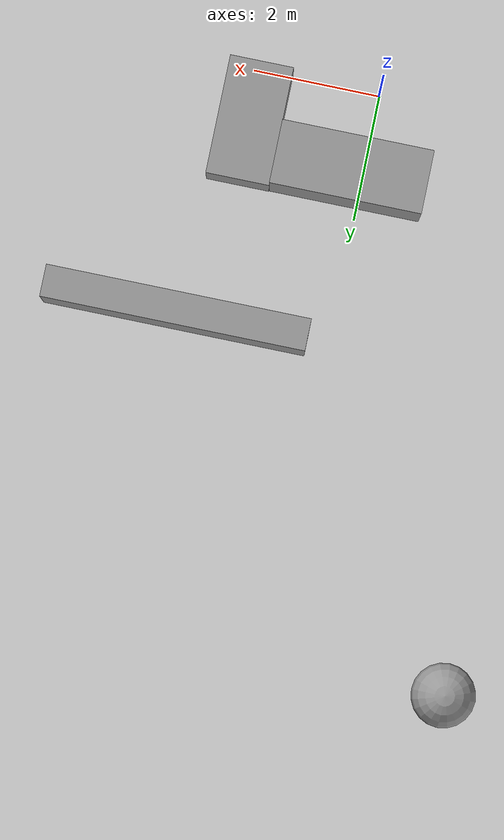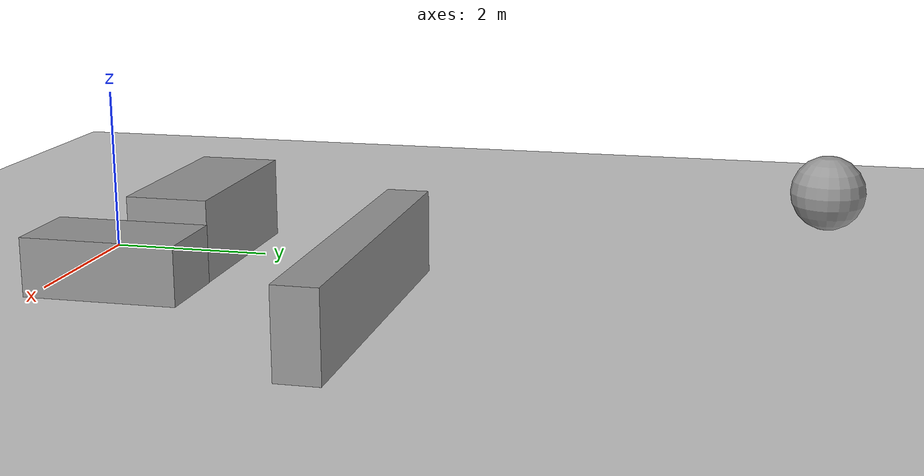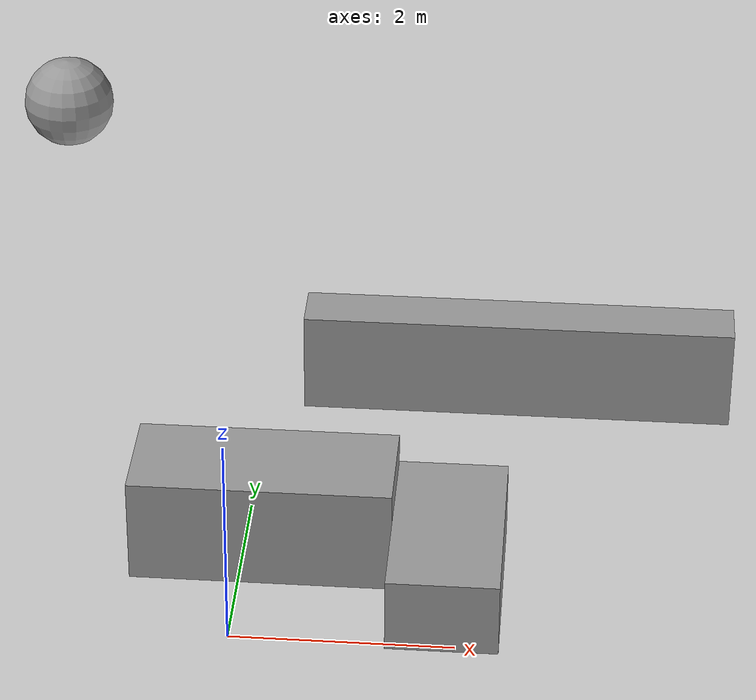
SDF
<sdf version="1.7">
 <world name="default">
  <light name="sun" type="directional">
   <pose>0 0 10 0 -0 0</pose>
   <diffuse>0.8 0.8 0.8 1</diffuse>
   <specular>0.2 0.2 0.2 1</specular>
   <attenuation>
    <range>1000</range>
    <constant>0.9</constant>
    <linear>0.01</linear>
    <quadratic>0.001</quadratic>
   </attenuation>
   <direction>-0.5 0.1 -0.9</direction>
   <spot><inner_angle>0</inner_angle><outer_angle>0</outer_angle><falloff>0</falloff></spot>
  </light>
  <model name="ground_plane">
   <static>1</static>
   <link name="link">
    <collision name="collision">
     <geometry><plane><normal>0 0 1</normal><size>100 100</size></plane></geometry>
     <surface>
      <contact><collide_bitmask>65535</collide_bitmask></contact>
      <friction><ode><mu>100</mu><mu2>50</mu2></ode></friction>
     </surface>
    </collision>
    <visual name="visual">
     <cast_shadows>0</cast_shadows>
     <geometry><plane><normal>0 0 1</normal><size>100 100</size></plane></geometry>
     <material>
      <script><uri>file://media/materials/scripts/gazebo.material</uri><name>Gazebo/Grey</name></script>
     </material>
    </visual>
   </link>
  </model>
  <gravity>0 0 -9.8</gravity>
  <magnetic_field>6e-06 2.3e-05 -4.2e-05</magnetic_field>
  <atmosphere type="adiabatic"/>
  <physics type="ode">
   <max_step_size>0.001</max_step_size>
   <real_time_factor>1</real_time_factor>
   <real_time_update_rate>1000</real_time_update_rate>
  </physics>
  <scene><ambient>0.4 0.4 0.4 1</ambient><background>0.7 0.7 0.7 1</background><shadows>1</shadows></scene>
  <audio><device>default</device></audio>
  <spherical_coordinates>
   <surface_model>EARTH_WGS84</surface_model>
   <latitude_deg>0</latitude_deg>
   <longitude_deg>0</longitude_deg>
   <elevation>0</elevation>
   <heading_deg>0</heading_deg>
  </spherical_coordinates>
  <model name="unit_box_1">
   <pose>0.196842 1.30829 0.5 0 0 -2e-06</pose>
   <link name="link">
    <inertial>
     <mass>1</mass>
     <inertia>
      <ixx>0.166667</ixx>
      <ixy>0</ixy>
      <ixz>0</ixz>
      <iyy>0.166667</iyy>
      <iyz>0</iyz>
      <izz>0.166667</izz>
     </inertia>
    </inertial>
    <collision name="collision"><geometry><box><size>2.38097 1 1</size></box></geometry></collision>
    <visual name="visual">
     <geometry><box><size>2.38097 1 1</size></box></geometry>
     <material>
      <script><name>Gazebo/Grey</name><uri>file://media/materials/scripts/gazebo.material</uri></script>
     </material>
    </visual>
   </link>
   <static>1</static>
  </model>
  <model name="unit_sphere">
   <pose>-2.81866 8.95253 0.5 0 -0 0</pose>
   <link name="link">
    <inertial>
     <mass>1</mass>
     <inertia><ixx>0.1</ixx><ixy>0</ixy><ixz>0</ixz><iyy>0.1</iyy><iyz>0</iyz><izz>0.1</izz></inertia>
    </inertial>
    <collision name="collision"><geometry><sphere><radius>0.5</radius></sphere></geometry></collision>
    <visual name="visual">
     <geometry><sphere><radius>0.5</radius></sphere></geometry>
     <material>
      <script><name>Gazebo/Grey</name><uri>file://media/materials/scripts/gazebo.material</uri></script>
     </material>
    </visual>
   </link>
   <static>1</static>
  </model>
  <model name="unit_box_2">
   <pose>2.40037 3.98226 0.5 0 -0 0</pose>
   <link name="link">
    <inertial>
     <mass>1</mass>
     <inertia>
      <ixx>0.166667</ixx>
      <ixy>0</ixy>
      <ixz>0</ixz>
      <iyy>0.166667</iyy>
      <iyz>0</iyz>
      <izz>0.166667</izz>
     </inertia>
    </inertial>
    <collision name="collision"><geometry><box><size>4.14526 0.50423 1</size></box></geometry></collision>
    <visual name="visual">
     <geometry><box><size>4.14526 0.50423 1</size></box></geometry>
     <material>
      <script><name>Gazebo/Grey</name><uri>file://media/materials/scripts/gazebo.material</uri></script>
     </material>
    </visual>
   </link>
   <static>1</static>
  </model>
  <model name="unit_box_4">
   <pose>1.88733 0.877472 0.354333 0 1e-05 -6e-06</pose>
   <link name="link">
    <inertial>
     <mass>1</mass>
     <inertia>
      <ixx>0.166667</ixx>
      <ixy>0</ixy>
      <ixz>0</ixz>
      <iyy>0.166667</iyy>
      <iyz>0</iyz>
      <izz>0.166667</izz>
     </inertia>
    </inertial>
    <collision name="collision"><geometry><box><size>1 1.87531 0.708676</size></box></geometry></collision>
    <visual name="visual">
     <geometry><box><size>1 1.87531 0.708676</size></box></geometry>
     <material>
      <script><name>Gazebo/Grey</name><uri>file://media/materials/scripts/gazebo.material</uri></script>
     </material>
    </visual>
   </link>
  </model>
 </world>
</sdf>
